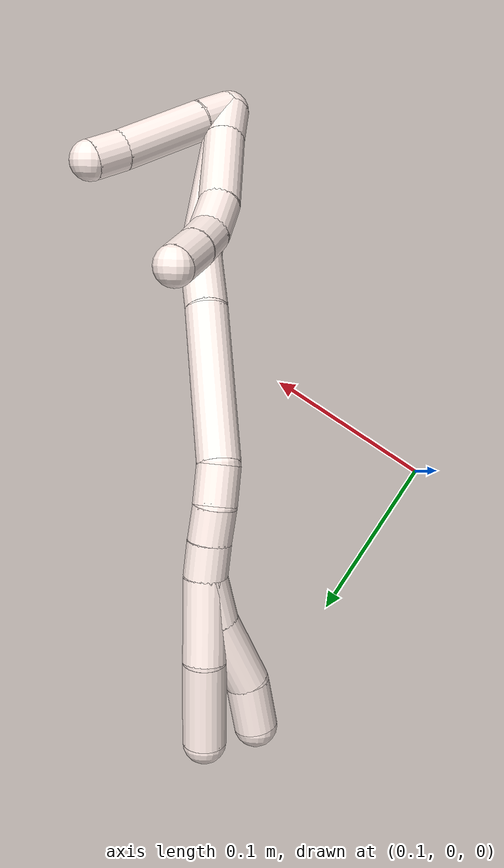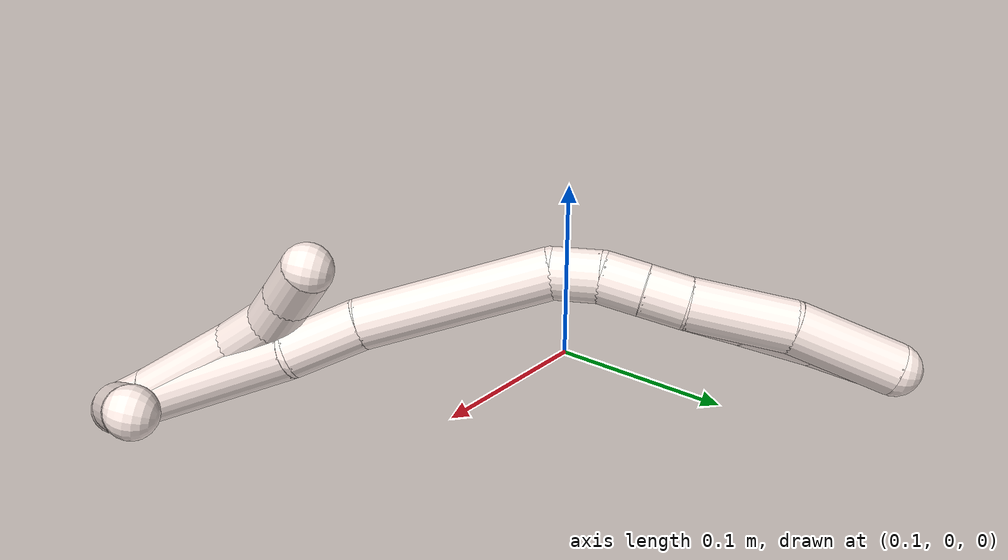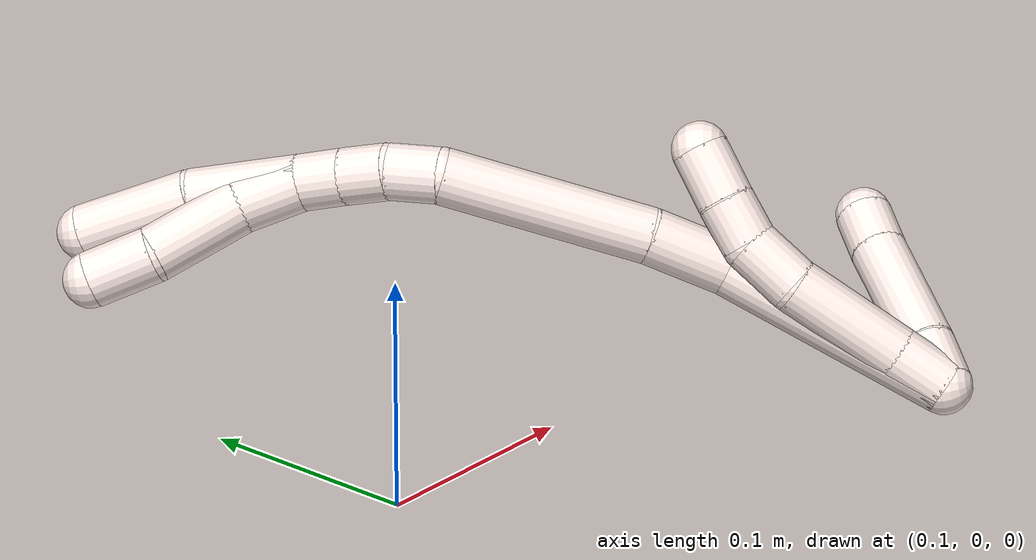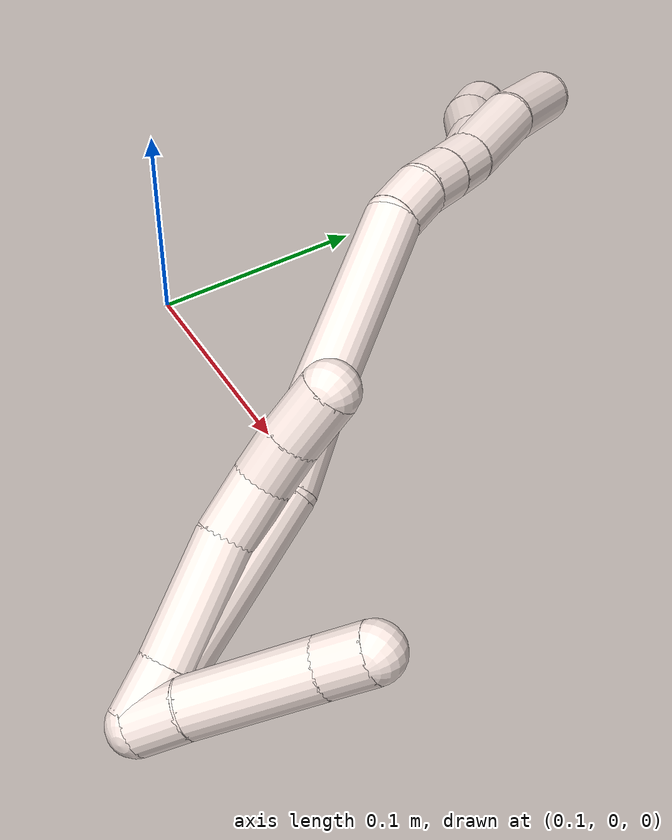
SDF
<sdf version="1.7">
 <world name="default">
  <model name="11">
   <static>0</static>
   <link name="11">
    <collision name="collision-cylinder-e_1_2_8">
     <pose>-0.002918 0.007958 -0.009081 -2.42201 -0.237129 0.613377</pose>
     <geometry><cylinder><radius>0.0125</radius><length>0.024845</length></cylinder></geometry>
     <surface>
      <friction><ode><mu>1.16</mu><mu2>1.16</mu2><slip1>0</slip1><slip2>0</slip2></ode></friction>
      <contact><ode><kp>1e+06</kp><kd>1</kd><max_vel>0</max_vel><min_depth>0.001</min_depth></ode></contact>
     </surface>
    </collision>
    <visual name="visual-cylinder-e_1_2_8">
     <pose>-0.002918 0.007958 -0.009081 -2.42201 -0.237129 0.613377</pose>
     <geometry><cylinder><radius>0.0125</radius><length>0.024845</length></cylinder></geometry>
     <material><ambient>1 0.933333 0.909804 1</ambient></material>
    </visual>
    <collision name="collision-cylinder-e_2_8_9">
     <pose>-0.013657 0.032603 -0.037133 -2.42015 -0.300183 0.762555</pose>
     <geometry><cylinder><radius>0.0125</radius><length>0.052896</length></cylinder></geometry>
     <surface>
      <friction><ode><mu>1.16</mu><mu2>1.16</mu2><slip1>0</slip1><slip2>0</slip2></ode></friction>
      <contact><ode><kp>1e+06</kp><kd>1</kd><max_vel>0</max_vel><min_depth>0.001</min_depth></ode></contact>
     </surface>
    </collision>
    <visual name="visual-cylinder-e_2_8_9">
     <pose>-0.013657 0.032603 -0.037133 -2.42015 -0.300183 0.762555</pose>
     <geometry><cylinder><radius>0.0125</radius><length>0.052896</length></cylinder></geometry>
     <material><ambient>1 0.933333 0.909804 1</ambient></material>
    </visual>
    <collision name="collision-cylinder-e_3_9_10">
     <pose>-0.023527 0.059192 -0.064474 -2.2726 -0.156814 0.33542</pose>
     <geometry><cylinder><radius>0.0125</radius><length>0.026253</length></cylinder></geometry>
     <surface>
      <friction><ode><mu>1.16</mu><mu2>1.16</mu2><slip1>0</slip1><slip2>0</slip2></ode></friction>
      <contact><ode><kp>1e+06</kp><kd>1</kd><max_vel>0</max_vel><min_depth>0.001</min_depth></ode></contact>
     </surface>
    </collision>
    <visual name="visual-cylinder-e_3_9_10">
     <pose>-0.023527 0.059192 -0.064474 -2.2726 -0.156814 0.33542</pose>
     <geometry><cylinder><radius>0.0125</radius><length>0.026253</length></cylinder></geometry>
     <material><ambient>1 0.933333 0.909804 1</ambient></material>
    </visual>
    <collision name="collision-cylinder-e_4_10_11">
     <pose>-0.026652 0.07882 -0.076651 -1.94387 -0.102481 0.150013</pose>
     <geometry><cylinder><radius>0.0125</radius><length>0.021001</length></cylinder></geometry>
     <surface>
      <friction><ode><mu>1.16</mu><mu2>1.16</mu2><slip1>0</slip1><slip2>0</slip2></ode></friction>
      <contact><ode><kp>1e+06</kp><kd>1</kd><max_vel>0</max_vel><min_depth>0.001</min_depth></ode></contact>
     </surface>
    </collision>
    <visual name="visual-cylinder-e_4_10_11">
     <pose>-0.026652 0.07882 -0.076651 -1.94387 -0.102481 0.150013</pose>
     <geometry><cylinder><radius>0.0125</radius><length>0.021001</length></cylinder></geometry>
     <material><ambient>1 0.933333 0.909804 1</ambient></material>
    </visual>
    <collision name="collision-cylinder-e_5_11_6">
     <pose>-0.028099 0.100306 -0.08469 -1.91619 -0.029849 0.042459</pose>
     <geometry><cylinder><radius>0.0125</radius><length>0.025006</length></cylinder></geometry>
     <surface>
      <friction><ode><mu>1.16</mu><mu2>1.16</mu2><slip1>0</slip1><slip2>0</slip2></ode></friction>
      <contact><ode><kp>1e+06</kp><kd>1</kd><max_vel>0</max_vel><min_depth>0.001</min_depth></ode></contact>
     </surface>
    </collision>
    <visual name="visual-cylinder-e_5_11_6">
     <pose>-0.028099 0.100306 -0.08469 -1.91619 -0.029849 0.042459</pose>
     <geometry><cylinder><radius>0.0125</radius><length>0.025006</length></cylinder></geometry>
     <material><ambient>1 0.933333 0.909804 1</ambient></material>
    </visual>
    <collision name="collision-cylinder-e_1_2_12">
     <pose>0.004845 0.009595 -0.003265 -1.8988 0.445964 -0.613388</pose>
     <geometry><cylinder><radius>0.0125</radius><length>0.022467</length></cylinder></geometry>
     <surface>
      <friction><ode><mu>1.16</mu><mu2>1.16</mu2><slip1>0</slip1><slip2>0</slip2></ode></friction>
      <contact><ode><kp>1e+06</kp><kd>1</kd><max_vel>0</max_vel><min_depth>0.001</min_depth></ode></contact>
     </surface>
    </collision>
    <visual name="visual-cylinder-e_1_2_12">
     <pose>0.004845 0.009595 -0.003265 -1.8988 0.445964 -0.613388</pose>
     <geometry><cylinder><radius>0.0125</radius><length>0.022467</length></cylinder></geometry>
     <material><ambient>1 0.933333 0.909804 1</ambient></material>
    </visual>
    <collision name="collision-cylinder-e_2_12_13">
     <pose>0.023294 0.041957 -0.016225 -1.97335 0.502627 -0.740884</pose>
     <geometry><cylinder><radius>0.0125</radius><length>0.056477</length></cylinder></geometry>
     <surface>
      <friction><ode><mu>1.16</mu><mu2>1.16</mu2><slip1>0</slip1><slip2>0</slip2></ode></friction>
      <contact><ode><kp>1e+06</kp><kd>1</kd><max_vel>0</max_vel><min_depth>0.001</min_depth></ode></contact>
     </surface>
    </collision>
    <visual name="visual-cylinder-e_2_12_13">
     <pose>0.023294 0.041957 -0.016225 -1.97335 0.502627 -0.740884</pose>
     <geometry><cylinder><radius>0.0125</radius><length>0.056477</length></cylinder></geometry>
     <material><ambient>1 0.933333 0.909804 1</ambient></material>
    </visual>
    <collision name="collision-cylinder-e_3_13_5">
     <pose>0.041853 0.073503 -0.028956 -1.90385 0.490149 -0.675424</pose>
     <geometry><cylinder><radius>0.0125</radius><length>0.021056</length></cylinder></geometry>
     <surface>
      <friction><ode><mu>1.16</mu><mu2>1.16</mu2><slip1>0</slip1><slip2>0</slip2></ode></friction>
      <contact><ode><kp>1e+06</kp><kd>1</kd><max_vel>0</max_vel><min_depth>0.001</min_depth></ode></contact>
     </surface>
    </collision>
    <visual name="visual-cylinder-e_3_13_5">
     <pose>0.041853 0.073503 -0.028956 -1.90385 0.490149 -0.675424</pose>
     <geometry><cylinder><radius>0.0125</radius><length>0.021056</length></cylinder></geometry>
     <material><ambient>1 0.933333 0.909804 1</ambient></material>
    </visual>
    <collision name="collision-cylinder-e_1_2_14">
     <pose>-0.008126 0.030715 -0.042444 -2.51517 -0.153874 0.467351</pose>
     <geometry><cylinder><radius>0.0125</radius><length>0.106036</length></cylinder></geometry>
     <surface>
      <friction><ode><mu>1.16</mu><mu2>1.16</mu2><slip1>0</slip1><slip2>0</slip2></ode></friction>
      <contact><ode><kp>1e+06</kp><kd>1</kd><max_vel>0</max_vel><min_depth>0.001</min_depth></ode></contact>
     </surface>
    </collision>
    <visual name="visual-cylinder-e_1_2_14">
     <pose>-0.008126 0.030715 -0.042444 -2.51517 -0.153874 0.467351</pose>
     <geometry><cylinder><radius>0.0125</radius><length>0.106036</length></cylinder></geometry>
     <material><ambient>1 0.933333 0.909804 1</ambient></material>
    </visual>
    <collision name="collision-cylinder-e_2_14_15">
     <pose>-0.023163 0.069705 -0.099845 -2.63622 -0.384207 1.29119</pose>
     <geometry><cylinder><radius>0.0125</radius><length>0.036875</length></cylinder></geometry>
     <surface>
      <friction><ode><mu>1.16</mu><mu2>1.16</mu2><slip1>0</slip1><slip2>0</slip2></ode></friction>
      <contact><ode><kp>1e+06</kp><kd>1</kd><max_vel>0</max_vel><min_depth>0.001</min_depth></ode></contact>
     </surface>
    </collision>
    <visual name="visual-cylinder-e_2_14_15">
     <pose>-0.023163 0.069705 -0.099845 -2.63622 -0.384207 1.29119</pose>
     <geometry><cylinder><radius>0.0125</radius><length>0.036875</length></cylinder></geometry>
     <material><ambient>1 0.933333 0.909804 1</ambient></material>
    </visual>
    <collision name="collision-cylinder-e_3_15_16">
     <pose>-0.044331 0.095205 -0.155738 -2.74331 -0.310627 1.31966</pose>
     <geometry><cylinder><radius>0.0125</radius><length>0.093289</length></cylinder></geometry>
     <surface>
      <friction><ode><mu>1.16</mu><mu2>1.16</mu2><slip1>0</slip1><slip2>0</slip2></ode></friction>
      <contact><ode><kp>1e+06</kp><kd>1</kd><max_vel>0</max_vel><min_depth>0.001</min_depth></ode></contact>
     </surface>
    </collision>
    <visual name="visual-cylinder-e_3_15_16">
     <pose>-0.044331 0.095205 -0.155738 -2.74331 -0.310627 1.31966</pose>
     <geometry><cylinder><radius>0.0125</radius><length>0.093289</length></cylinder></geometry>
     <material><ambient>1 0.933333 0.909804 1</ambient></material>
    </visual>
    <collision name="collision-cylinder-e_4_16_17">
     <pose>-0.058832 0.114811 -0.207887 -2.93238 -0.021314 0.202325</pose>
     <geometry><cylinder><radius>0.0125</radius><length>0.022932</length></cylinder></geometry>
     <surface>
      <friction><ode><mu>1.16</mu><mu2>1.16</mu2><slip1>0</slip1><slip2>0</slip2></ode></friction>
      <contact><ode><kp>1e+06</kp><kd>1</kd><max_vel>0</max_vel><min_depth>0.001</min_depth></ode></contact>
     </surface>
    </collision>
    <visual name="visual-cylinder-e_4_16_17">
     <pose>-0.058832 0.114811 -0.207887 -2.93238 -0.021314 0.202325</pose>
     <geometry><cylinder><radius>0.0125</radius><length>0.022932</length></cylinder></geometry>
     <material><ambient>1 0.933333 0.909804 1</ambient></material>
    </visual>
    <collision name="collision-cylinder-e_5_17_18">
     <pose>-0.057792 0.117595 -0.229195 -3.10168 0.126454 -2.53077</pose>
     <geometry><cylinder><radius>0.0125</radius><length>0.020368</length></cylinder></geometry>
     <surface>
      <friction><ode><mu>1.16</mu><mu2>1.16</mu2><slip1>0</slip1><slip2>0</slip2></ode></friction>
      <contact><ode><kp>1e+06</kp><kd>1</kd><max_vel>0</max_vel><min_depth>0.001</min_depth></ode></contact>
     </surface>
    </collision>
    <visual name="visual-cylinder-e_5_17_18">
     <pose>-0.057792 0.117595 -0.229195 -3.10168 0.126454 -2.53077</pose>
     <geometry><cylinder><radius>0.0125</radius><length>0.020368</length></cylinder></geometry>
     <material><ambient>1 0.933333 0.909804 1</ambient></material>
    </visual>
    <collision name="collision-cylinder-e_6_18_1">
     <pose>-0.05549 0.118097 -0.249488 -3.13185 0.099468 -2.94639</pose>
     <geometry><cylinder><radius>0.0125</radius><length>0.020499</length></cylinder></geometry>
     <surface>
      <friction><ode><mu>1.16</mu><mu2>1.16</mu2><slip1>0</slip1><slip2>0</slip2></ode></friction>
      <contact><ode><kp>1e+06</kp><kd>1</kd><max_vel>0</max_vel><min_depth>0.001</min_depth></ode></contact>
     </surface>
    </collision>
    <visual name="visual-cylinder-e_6_18_1">
     <pose>-0.05549 0.118097 -0.249488 -3.13185 0.099468 -2.94639</pose>
     <geometry><cylinder><radius>0.0125</radius><length>0.020499</length></cylinder></geometry>
     <material><ambient>1 0.933333 0.909804 1</ambient></material>
    </visual>
    <collision name="collision-cylinder-e_1_1_19">
     <pose>-0.054738 0.118285 -0.284048 -3.13795 -0.01089 2.49526</pose>
     <geometry><cylinder><radius>0.0125</radius><length>0.048725</length></cylinder></geometry>
     <surface>
      <friction><ode><mu>1.16</mu><mu2>1.16</mu2><slip1>0</slip1><slip2>0</slip2></ode></friction>
      <contact><ode><kp>1e+06</kp><kd>1</kd><max_vel>0</max_vel><min_depth>0.001</min_depth></ode></contact>
     </surface>
    </collision>
    <visual name="visual-cylinder-e_1_1_19">
     <pose>-0.054738 0.118285 -0.284048 -3.13795 -0.01089 2.49526</pose>
     <geometry><cylinder><radius>0.0125</radius><length>0.048725</length></cylinder></geometry>
     <material><ambient>1 0.933333 0.909804 1</ambient></material>
    </visual>
    <collision name="collision-cylinder-e_2_19_4">
     <pose>-0.053119 0.114184 -0.333631 2.97697 0.073568 0.839181</pose>
     <geometry><cylinder><radius>0.0125</radius><length>0.051275</length></cylinder></geometry>
     <surface>
      <friction><ode><mu>1.16</mu><mu2>1.16</mu2><slip1>0</slip1><slip2>0</slip2></ode></friction>
      <contact><ode><kp>1e+06</kp><kd>1</kd><max_vel>0</max_vel><min_depth>0.001</min_depth></ode></contact>
     </surface>
    </collision>
    <visual name="visual-cylinder-e_2_19_4">
     <pose>-0.053119 0.114184 -0.333631 2.97697 0.073568 0.839181</pose>
     <geometry><cylinder><radius>0.0125</radius><length>0.051275</length></cylinder></geometry>
     <material><ambient>1 0.933333 0.909804 1</ambient></material>
    </visual>
    <collision name="collision-cylinder-e_1_1_20">
     <pose>-0.056499 0.114795 -0.273241 2.89569 -0.143997 -1.05659</pose>
     <geometry><cylinder><radius>0.0125</radius><length>0.028242</length></cylinder></geometry>
     <surface>
      <friction><ode><mu>1.16</mu><mu2>1.16</mu2><slip1>0</slip1><slip2>0</slip2></ode></friction>
      <contact><ode><kp>1e+06</kp><kd>1</kd><max_vel>0</max_vel><min_depth>0.001</min_depth></ode></contact>
     </surface>
    </collision>
    <visual name="visual-cylinder-e_1_1_20">
     <pose>-0.056499 0.114795 -0.273241 2.89569 -0.143997 -1.05659</pose>
     <geometry><cylinder><radius>0.0125</radius><length>0.028242</length></cylinder></geometry>
     <material><ambient>1 0.933333 0.909804 1</ambient></material>
    </visual>
    <collision name="collision-cylinder-e_2_20_21">
     <pose>-0.064115 0.102796 -0.305524 2.71128 -0.26491 -1.09498</pose>
     <geometry><cylinder><radius>0.0125</radius><length>0.042703</length></cylinder></geometry>
     <surface>
      <friction><ode><mu>1.16</mu><mu2>1.16</mu2><slip1>0</slip1><slip2>0</slip2></ode></friction>
      <contact><ode><kp>1e+06</kp><kd>1</kd><max_vel>0</max_vel><min_depth>0.001</min_depth></ode></contact>
     </surface>
    </collision>
    <visual name="visual-cylinder-e_2_20_21">
     <pose>-0.064115 0.102796 -0.305524 2.71128 -0.26491 -1.09498</pose>
     <geometry><cylinder><radius>0.0125</radius><length>0.042703</length></cylinder></geometry>
     <material><ambient>1 0.933333 0.909804 1</ambient></material>
    </visual>
    <collision name="collision-cylinder-e_3_21_3">
     <pose>-0.070839 0.090486 -0.338251 2.88228 -0.078076 -0.582093</pose>
     <geometry><cylinder><radius>0.0125</radius><length>0.029055</length></cylinder></geometry>
     <surface>
      <friction><ode><mu>1.16</mu><mu2>1.16</mu2><slip1>0</slip1><slip2>0</slip2></ode></friction>
      <contact><ode><kp>1e+06</kp><kd>1</kd><max_vel>0</max_vel><min_depth>0.001</min_depth></ode></contact>
     </surface>
    </collision>
    <visual name="visual-cylinder-e_3_21_3">
     <pose>-0.070839 0.090486 -0.338251 2.88228 -0.078076 -0.582093</pose>
     <geometry><cylinder><radius>0.0125</radius><length>0.029055</length></cylinder></geometry>
     <material><ambient>1 0.933333 0.909804 1</ambient></material>
    </visual>
    <collision name="collision-sphere-3">
     <pose>-0.071972 0.086773 -0.35225 0 -0 0</pose>
     <geometry><sphere><radius>0.0125</radius></sphere></geometry>
     <surface>
      <friction><ode><mu>1.16</mu><mu2>1.16</mu2><slip1>0</slip1><slip2>0</slip2></ode></friction>
      <contact><ode><kp>1e+06</kp><kd>1</kd><max_vel>0</max_vel><min_depth>0.001</min_depth></ode></contact>
     </surface>
    </collision>
    <visual name="visual-sphere-3">
     <pose>-0.071972 0.086773 -0.35225 0 -0 0</pose>
     <geometry><sphere><radius>0.0125</radius></sphere></geometry>
     <material><ambient>1 0.933333 0.909804 1</ambient></material>
    </visual>
    <collision name="collision-sphere-21">
     <pose>-0.069706 0.0942 -0.324252 0 -0 0</pose>
     <geometry><sphere><radius>0.0125</radius></sphere></geometry>
     <surface>
      <friction><ode><mu>1.16</mu><mu2>1.16</mu2><slip1>0</slip1><slip2>0</slip2></ode></friction>
      <contact><ode><kp>1e+06</kp><kd>1</kd><max_vel>0</max_vel><min_depth>0.001</min_depth></ode></contact>
     </surface>
    </collision>
    <visual name="visual-sphere-21">
     <pose>-0.069706 0.0942 -0.324252 0 -0 0</pose>
     <geometry><sphere><radius>0.0125</radius></sphere></geometry>
     <material><ambient>1 0.933333 0.909804 1</ambient></material>
    </visual>
    <collision name="collision-sphere-20">
     <pose>-0.058525 0.111393 -0.286796 0 -0 0</pose>
     <geometry><sphere><radius>0.0125</radius></sphere></geometry>
     <surface>
      <friction><ode><mu>1.16</mu><mu2>1.16</mu2><slip1>0</slip1><slip2>0</slip2></ode></friction>
      <contact><ode><kp>1e+06</kp><kd>1</kd><max_vel>0</max_vel><min_depth>0.001</min_depth></ode></contact>
     </surface>
    </collision>
    <visual name="visual-sphere-20">
     <pose>-0.058525 0.111393 -0.286796 0 -0 0</pose>
     <geometry><sphere><radius>0.0125</radius></sphere></geometry>
     <material><ambient>1 0.933333 0.909804 1</ambient></material>
    </visual>
    <collision name="collision-sphere-4">
     <pose>-0.051234 0.109994 -0.358853 0 -0 0</pose>
     <geometry><sphere><radius>0.0125</radius></sphere></geometry>
     <surface>
      <friction><ode><mu>1.16</mu><mu2>1.16</mu2><slip1>0</slip1><slip2>0</slip2></ode></friction>
      <contact><ode><kp>1e+06</kp><kd>1</kd><max_vel>0</max_vel><min_depth>0.001</min_depth></ode></contact>
     </surface>
    </collision>
    <visual name="visual-sphere-4">
     <pose>-0.051234 0.109994 -0.358853 0 -0 0</pose>
     <geometry><sphere><radius>0.0125</radius></sphere></geometry>
     <material><ambient>1 0.933333 0.909804 1</ambient></material>
    </visual>
    <collision name="collision-sphere-6">
     <pose>-0.028472 0.112065 -0.088921 0 -0 0</pose>
     <geometry><sphere><radius>0.0125</radius></sphere></geometry>
     <surface>
      <friction><ode><mu>1.16</mu><mu2>1.16</mu2><slip1>0</slip1><slip2>0</slip2></ode></friction>
      <contact><ode><kp>1e+06</kp><kd>1</kd><max_vel>0</max_vel><min_depth>0.001</min_depth></ode></contact>
     </surface>
    </collision>
    <visual name="visual-sphere-6">
     <pose>-0.028472 0.112065 -0.088921 0 -0 0</pose>
     <geometry><sphere><radius>0.0125</radius></sphere></geometry>
     <material><ambient>1 0.933333 0.909804 1</ambient></material>
    </visual>
    <collision name="collision-sphere-11">
     <pose>-0.027726 0.088546 -0.080458 0 -0 0</pose>
     <geometry><sphere><radius>0.0125</radius></sphere></geometry>
     <surface>
      <friction><ode><mu>1.16</mu><mu2>1.16</mu2><slip1>0</slip1><slip2>0</slip2></ode></friction>
      <contact><ode><kp>1e+06</kp><kd>1</kd><max_vel>0</max_vel><min_depth>0.001</min_depth></ode></contact>
     </surface>
    </collision>
    <visual name="visual-sphere-11">
     <pose>-0.027726 0.088546 -0.080458 0 -0 0</pose>
     <geometry><sphere><radius>0.0125</radius></sphere></geometry>
     <material><ambient>1 0.933333 0.909804 1</ambient></material>
    </visual>
    <collision name="collision-sphere-10">
     <pose>-0.025577 0.069093 -0.072844 0 -0 0</pose>
     <geometry><sphere><radius>0.0125</radius></sphere></geometry>
     <surface>
      <friction><ode><mu>1.16</mu><mu2>1.16</mu2><slip1>0</slip1><slip2>0</slip2></ode></friction>
      <contact><ode><kp>1e+06</kp><kd>1</kd><max_vel>0</max_vel><min_depth>0.001</min_depth></ode></contact>
     </surface>
    </collision>
    <visual name="visual-sphere-10">
     <pose>-0.025577 0.069093 -0.072844 0 -0 0</pose>
     <geometry><sphere><radius>0.0125</radius></sphere></geometry>
     <material><ambient>1 0.933333 0.909804 1</ambient></material>
    </visual>
    <collision name="collision-sphere-9">
     <pose>-0.021477 0.04929 -0.056103 0 -0 0</pose>
     <geometry><sphere><radius>0.0125</radius></sphere></geometry>
     <surface>
      <friction><ode><mu>1.16</mu><mu2>1.16</mu2><slip1>0</slip1><slip2>0</slip2></ode></friction>
      <contact><ode><kp>1e+06</kp><kd>1</kd><max_vel>0</max_vel><min_depth>0.001</min_depth></ode></contact>
     </surface>
    </collision>
    <visual name="visual-sphere-9">
     <pose>-0.021477 0.04929 -0.056103 0 -0 0</pose>
     <geometry><sphere><radius>0.0125</radius></sphere></geometry>
     <material><ambient>1 0.933333 0.909804 1</ambient></material>
    </visual>
    <collision name="collision-sphere-2">
     <geometry><sphere><radius>0.0125</radius></sphere></geometry>
     <surface>
      <friction><ode><mu>1.16</mu><mu2>1.16</mu2><slip1>0</slip1><slip2>0</slip2></ode></friction>
      <contact><ode><kp>1e+06</kp><kd>1</kd><max_vel>0</max_vel><min_depth>0.001</min_depth></ode></contact>
     </surface>
    </collision>
    <visual name="visual-sphere-2">
     <geometry><sphere><radius>0.0125</radius></sphere></geometry>
     <material><ambient>1 0.933333 0.909804 1</ambient></material>
    </visual>
    <collision name="collision-sphere-19">
     <pose>-0.055003 0.118374 -0.308409 0 -0 0</pose>
     <geometry><sphere><radius>0.0125</radius></sphere></geometry>
     <surface>
      <friction><ode><mu>1.16</mu><mu2>1.16</mu2><slip1>0</slip1><slip2>0</slip2></ode></friction>
      <contact><ode><kp>1e+06</kp><kd>1</kd><max_vel>0</max_vel><min_depth>0.001</min_depth></ode></contact>
     </surface>
    </collision>
    <visual name="visual-sphere-19">
     <pose>-0.055003 0.118374 -0.308409 0 -0 0</pose>
     <geometry><sphere><radius>0.0125</radius></sphere></geometry>
     <material><ambient>1 0.933333 0.909804 1</ambient></material>
    </visual>
    <collision name="collision-sphere-8">
     <pose>-0.005836 0.015916 -0.018162 0 -0 0</pose>
     <geometry><sphere><radius>0.0125</radius></sphere></geometry>
     <surface>
      <friction><ode><mu>1.16</mu><mu2>1.16</mu2><slip1>0</slip1><slip2>0</slip2></ode></friction>
      <contact><ode><kp>1e+06</kp><kd>1</kd><max_vel>0</max_vel><min_depth>0.001</min_depth></ode></contact>
     </surface>
    </collision>
    <visual name="visual-sphere-8">
     <pose>-0.005836 0.015916 -0.018162 0 -0 0</pose>
     <geometry><sphere><radius>0.0125</radius></sphere></geometry>
     <material><ambient>1 0.933333 0.909804 1</ambient></material>
    </visual>
    <collision name="collision-sphere-12">
     <pose>0.009691 0.019189 -0.00653 0 -0 0</pose>
     <geometry><sphere><radius>0.0125</radius></sphere></geometry>
     <surface>
      <friction><ode><mu>1.16</mu><mu2>1.16</mu2><slip1>0</slip1><slip2>0</slip2></ode></friction>
      <contact><ode><kp>1e+06</kp><kd>1</kd><max_vel>0</max_vel><min_depth>0.001</min_depth></ode></contact>
     </surface>
    </collision>
    <visual name="visual-sphere-12">
     <pose>0.009691 0.019189 -0.00653 0 -0 0</pose>
     <geometry><sphere><radius>0.0125</radius></sphere></geometry>
     <material><ambient>1 0.933333 0.909804 1</ambient></material>
    </visual>
    <collision name="collision-sphere-13">
     <pose>0.036897 0.064725 -0.02592 0 -0 0</pose>
     <geometry><sphere><radius>0.0125</radius></sphere></geometry>
     <surface>
      <friction><ode><mu>1.16</mu><mu2>1.16</mu2><slip1>0</slip1><slip2>0</slip2></ode></friction>
      <contact><ode><kp>1e+06</kp><kd>1</kd><max_vel>0</max_vel><min_depth>0.001</min_depth></ode></contact>
     </surface>
    </collision>
    <visual name="visual-sphere-13">
     <pose>0.036897 0.064725 -0.02592 0 -0 0</pose>
     <geometry><sphere><radius>0.0125</radius></sphere></geometry>
     <material><ambient>1 0.933333 0.909804 1</ambient></material>
    </visual>
    <collision name="collision-sphere-5">
     <pose>0.04681 0.082281 -0.031993 0 -0 0</pose>
     <geometry><sphere><radius>0.0125</radius></sphere></geometry>
     <surface>
      <friction><ode><mu>1.16</mu><mu2>1.16</mu2><slip1>0</slip1><slip2>0</slip2></ode></friction>
      <contact><ode><kp>1e+06</kp><kd>1</kd><max_vel>0</max_vel><min_depth>0.001</min_depth></ode></contact>
     </surface>
    </collision>
    <visual name="visual-sphere-5">
     <pose>0.04681 0.082281 -0.031993 0 -0 0</pose>
     <geometry><sphere><radius>0.0125</radius></sphere></geometry>
     <material><ambient>1 0.933333 0.909804 1</ambient></material>
    </visual>
    <collision name="collision-sphere-14">
     <pose>-0.016252 0.061429 -0.084888 0 -0 0</pose>
     <geometry><sphere><radius>0.0125</radius></sphere></geometry>
     <surface>
      <friction><ode><mu>1.16</mu><mu2>1.16</mu2><slip1>0</slip1><slip2>0</slip2></ode></friction>
      <contact><ode><kp>1e+06</kp><kd>1</kd><max_vel>0</max_vel><min_depth>0.001</min_depth></ode></contact>
     </surface>
    </collision>
    <visual name="visual-sphere-14">
     <pose>-0.016252 0.061429 -0.084888 0 -0 0</pose>
     <geometry><sphere><radius>0.0125</radius></sphere></geometry>
     <material><ambient>1 0.933333 0.909804 1</ambient></material>
    </visual>
    <collision name="collision-sphere-15">
     <pose>-0.030074 0.077981 -0.114801 0 -0 0</pose>
     <geometry><sphere><radius>0.0125</radius></sphere></geometry>
     <surface>
      <friction><ode><mu>1.16</mu><mu2>1.16</mu2><slip1>0</slip1><slip2>0</slip2></ode></friction>
      <contact><ode><kp>1e+06</kp><kd>1</kd><max_vel>0</max_vel><min_depth>0.001</min_depth></ode></contact>
     </surface>
    </collision>
    <visual name="visual-sphere-15">
     <pose>-0.030074 0.077981 -0.114801 0 -0 0</pose>
     <geometry><sphere><radius>0.0125</radius></sphere></geometry>
     <material><ambient>1 0.933333 0.909804 1</ambient></material>
    </visual>
    <collision name="collision-sphere-16">
     <pose>-0.058588 0.11243 -0.196674 0 -0 0</pose>
     <geometry><sphere><radius>0.0125</radius></sphere></geometry>
     <surface>
      <friction><ode><mu>1.16</mu><mu2>1.16</mu2><slip1>0</slip1><slip2>0</slip2></ode></friction>
      <contact><ode><kp>1e+06</kp><kd>1</kd><max_vel>0</max_vel><min_depth>0.001</min_depth></ode></contact>
     </surface>
    </collision>
    <visual name="visual-sphere-16">
     <pose>-0.058588 0.11243 -0.196674 0 -0 0</pose>
     <geometry><sphere><radius>0.0125</radius></sphere></geometry>
     <material><ambient>1 0.933333 0.909804 1</ambient></material>
    </visual>
    <collision name="collision-sphere-17">
     <pose>-0.059077 0.117191 -0.2191 0 -0 0</pose>
     <geometry><sphere><radius>0.0125</radius></sphere></geometry>
     <surface>
      <friction><ode><mu>1.16</mu><mu2>1.16</mu2><slip1>0</slip1><slip2>0</slip2></ode></friction>
      <contact><ode><kp>1e+06</kp><kd>1</kd><max_vel>0</max_vel><min_depth>0.001</min_depth></ode></contact>
     </surface>
    </collision>
    <visual name="visual-sphere-17">
     <pose>-0.059077 0.117191 -0.2191 0 -0 0</pose>
     <geometry><sphere><radius>0.0125</radius></sphere></geometry>
     <material><ambient>1 0.933333 0.909804 1</ambient></material>
    </visual>
    <collision name="collision-sphere-18">
     <pose>-0.056508 0.117998 -0.23929 0 -0 0</pose>
     <geometry><sphere><radius>0.0125</radius></sphere></geometry>
     <surface>
      <friction><ode><mu>1.16</mu><mu2>1.16</mu2><slip1>0</slip1><slip2>0</slip2></ode></friction>
      <contact><ode><kp>1e+06</kp><kd>1</kd><max_vel>0</max_vel><min_depth>0.001</min_depth></ode></contact>
     </surface>
    </collision>
    <visual name="visual-sphere-18">
     <pose>-0.056508 0.117998 -0.23929 0 -0 0</pose>
     <geometry><sphere><radius>0.0125</radius></sphere></geometry>
     <material><ambient>1 0.933333 0.909804 1</ambient></material>
    </visual>
    <collision name="collision-sphere-1">
     <pose>-0.054472 0.118197 -0.259687 0 -0 0</pose>
     <geometry><sphere><radius>0.0125</radius></sphere></geometry>
     <surface>
      <friction><ode><mu>1.16</mu><mu2>1.16</mu2><slip1>0</slip1><slip2>0</slip2></ode></friction>
      <contact><ode><kp>1e+06</kp><kd>1</kd><max_vel>0</max_vel><min_depth>0.001</min_depth></ode></contact>
     </surface>
    </collision>
    <visual name="visual-sphere-1">
     <pose>-0.054472 0.118197 -0.259687 0 -0 0</pose>
     <geometry><sphere><radius>0.0125</radius></sphere></geometry>
     <material><ambient>1 0.933333 0.909804 1</ambient></material>
    </visual>
    <inertial>
     <pose>-0.028889 0.074413 -0.144012 0 -0 0</pose>
     <mass>0.75</mass>
     <inertia>
      <ixx>0.000265</ixx>
      <ixy>0</ixy>
      <ixz>0</ixz>
      <iyy>4.9e-05</iyy>
      <iyz>0</iyz>
      <izz>-0.000123</izz>
     </inertia>
    </inertial>
   </link>
   <pose>0.317777 -0.121325 0.013906 1.34757 0.468242 0.459099</pose>
  </model>
 </world>
</sdf>
